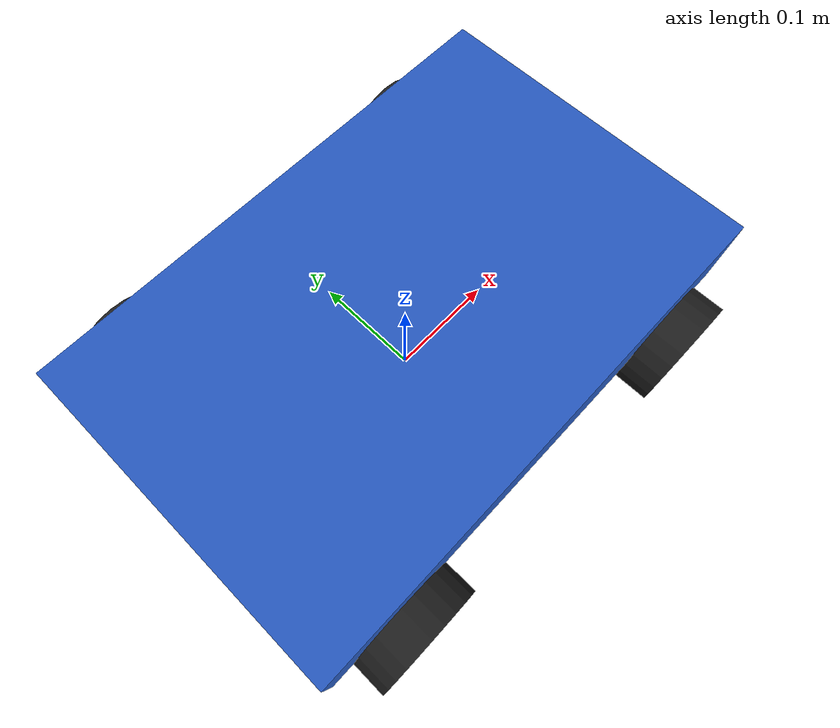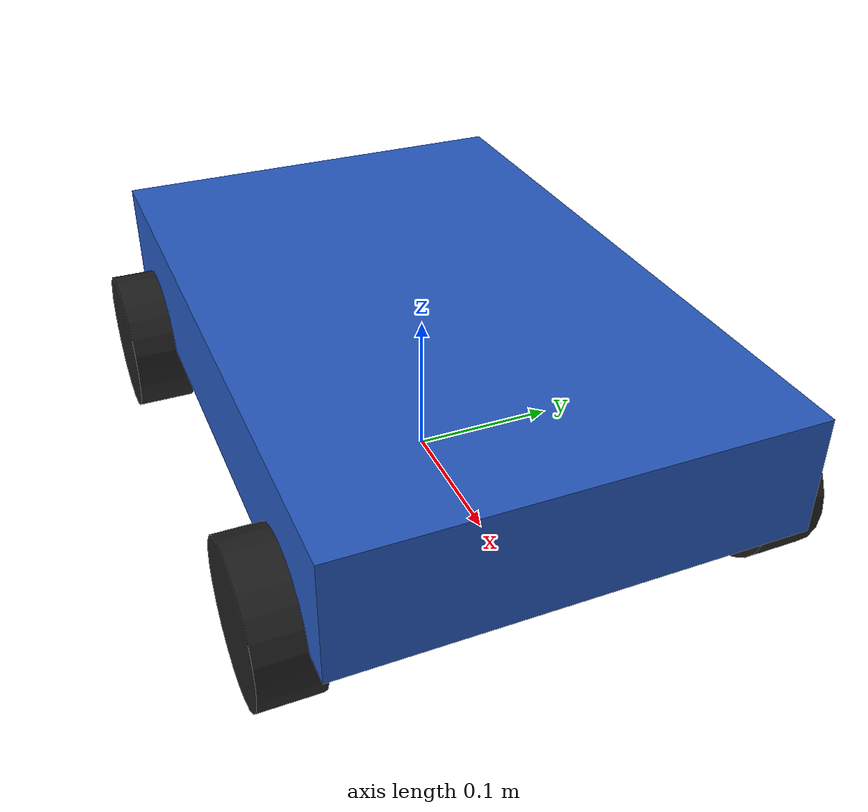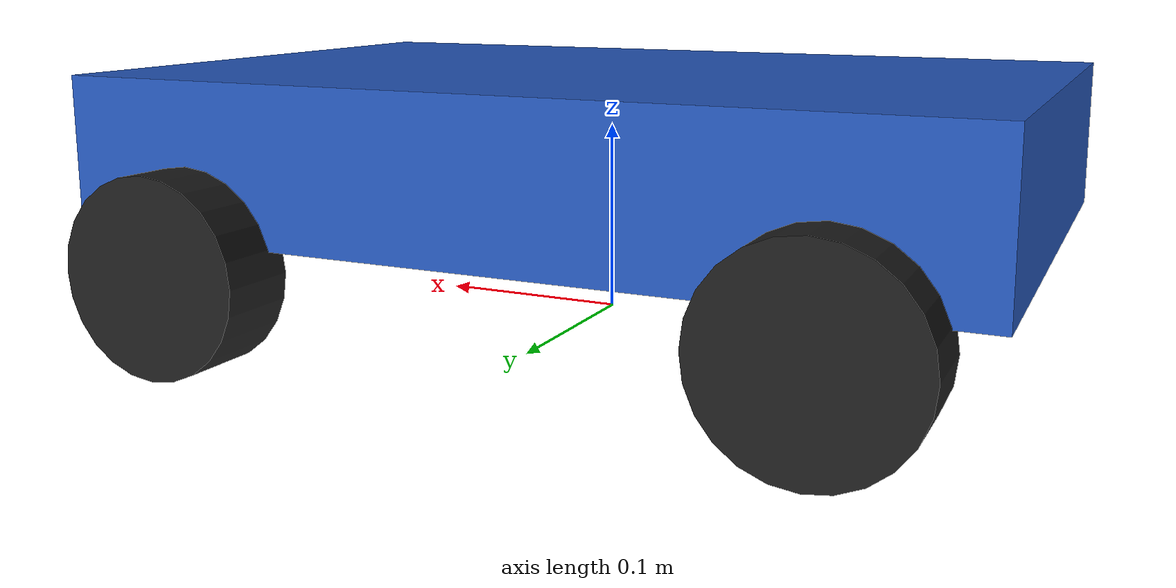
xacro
<?xml version="1.0"?>
<!-- Mecanum (roller) base; see holonomic_wheels_macro.xacro. -->
<robot name="mecanum_car" xmlns:xacro="http://ros.org/wiki/xacro">
  <xacro:arg name="is_ignition" default="true"/>
  <xacro:arg name="is_sim" default="true"/>
  <xacro:include filename="$(find robot_lab_robots)/description_common/urdf/oakd_camera.xacro"/>
  <xacro:include filename="$(find robot_lab_robots)/holonomic_wheels/urdf/holonomic_wheels_macro.xacro"/>
  <xacro:mecanum_car robot_name="mecanum_car"/>
</robot>

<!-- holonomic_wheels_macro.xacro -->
<robot xmlns:xacro="http://www.ros.org/wiki/xacro">

  <xacro:macro name="holonomic_wheel" params="name radius:=0.05 width:=0.04 mass:=0.3">
    <link name="${name}_link">
      <inertial>
        <mass value="${mass}"/>
        <inertia ixx="2.28e-4" ixy="0" ixz="0" iyy="3.75e-4" iyz="0" izz="2.28e-4"/>
      </inertial>
      <visual>
        <origin xyz="0 0 0" rpy="1.5708 0 0"/>
        <geometry>
          <cylinder radius="${radius}" length="${width}"/>
        </geometry>
        <material name="holonomic_tyre"/>
      </visual>
      <collision>
        <origin xyz="0 0 0" rpy="1.5708 0 0"/>
        <geometry>
          <cylinder radius="${radius}" length="${width}"/>
        </geometry>
      </collision>
    </link>
    <gazebo reference="${name}_link">
      <mu1>1.2</mu1>
      <mu2>1.2</mu2>
      <kp>1000000.0</kp>
      <kd>100.0</kd>
      <minDepth>0.001</minDepth>
      <maxVel>0.1</maxVel>
    </gazebo>
  </xacro:macro>

  <!-- One steered wheel: a knuckle link carries the wheel, so the wheel can
       spin about its own axis while the knuckle aims it. -->
  <xacro:macro name="steerable_wheel" params="corner">
    <link name="${corner}_steer_link">
      <inertial>
        <mass value="0.08"/>
        <inertia ixx="1.2e-5" ixy="0" ixz="0" iyy="1.2e-5" iyz="0" izz="1.2e-5"/>
      </inertial>
      <visual>
        <origin xyz="0 0 -0.012" rpy="0 0 0"/>
        <geometry>
          <cylinder radius="0.018" length="0.024"/>
        </geometry>
        <material name="holonomic_knuckle"/>
      </visual>
    </link>
    <joint name="${corner}_steer_joint" type="revolute">
      <parent link="base_link"/>
      <child link="${corner}_steer_link"/>
      <origin xyz="0 0 0" rpy="0 0 0"/>
      <axis xyz="0 0 1"/>
      <limit lower="-0.785" upper="0.785" effort="10.0" velocity="3.0"/>
      <dynamics damping="0.05" friction="0.0"/>
    </joint>
    <xacro:holonomic_wheel name="${corner}_wheel"/>
    <joint name="${corner}_wheel_joint" type="continuous">
      <parent link="${corner}_steer_link"/>
      <child link="${corner}_wheel_link"/>
      <origin xyz="0 0 -0.038" rpy="0 0 0"/>
      <axis xyz="0 1 0"/>
      <dynamics damping="0.005" friction="0.0"/>
    </joint>
  </xacro:macro>

  <!-- Chassis shared by both bases. -->
  <xacro:macro name="holonomic_chassis" params="robot_name">
    <link name="base_footprint"/>
    <link name="base_link">
      <inertial>
        <origin xyz="0 0 0.04" rpy="0 0 0"/>
        <mass value="3.4"/>
        <inertia ixx="1.5e-2" ixy="0" ixz="0" iyy="6.2e-2" iyz="0" izz="6.4e-2"/>
      </inertial>
      <visual>
        <origin xyz="0 0 0.04" rpy="0 0 0"/>
        <geometry>
          <box size="0.46 0.30 0.08"/>
        </geometry>
        <material name="holonomic_body"/>
      </visual>
      <collision>
        <origin xyz="0 0 0.04" rpy="0 0 0"/>
        <geometry>
          <box size="0.46 0.30 0.08"/>
        </geometry>
      </collision>
    </link>
    <joint name="base_joint" type="fixed">
      <parent link="base_footprint"/>
      <child link="base_link"/>
      <origin xyz="0 0 0.05" rpy="0 0 0"/>
    </joint>
  </xacro:macro>

  <xacro:macro name="holonomic_sensors">
    <link name="imu_link">
      <inertial>
        <mass value="0.01"/>
        <inertia ixx="1e-6" ixy="0" ixz="0" iyy="1e-6" iyz="0" izz="1e-6"/>
      </inertial>
    </link>
    <joint name="imu_joint" type="fixed">
      <parent link="base_link"/>
      <child link="imu_link"/>
      <origin xyz="0 0 0.08" rpy="0 0 0"/>
    </joint>
    <link name="laser_link">
      <inertial>
        <mass value="0.01"/>
        <inertia ixx="1e-6" ixy="0" ixz="0" iyy="1e-6" iyz="0" izz="1e-6"/>
      </inertial>
    </link>
    <joint name="laser_joint" type="fixed">
      <parent link="base_link"/>
      <child link="laser_link"/>
      <origin xyz="0.1 0 0.09" rpy="0 0 0"/>
    </joint>
  </xacro:macro>

  <xacro:macro name="holonomic_control" params="steer:=false">
    <ros2_control name="GazeboSimSystem" type="system">
      <hardware>
        <plugin>gz_ros2_control/GazeboSimROS2ControlPlugin</plugin>
      </hardware>
      <xacro:if value="${steer}">
        <xacro:macro name="holonomic_steer_interface" params="joint">
          <joint name="${joint}">
            <command_interface name="position">
              <param name="min">-0.785</param>
              <param name="max">0.785</param>
            </command_interface>
            <state_interface name="position"/>
            <state_interface name="velocity"/>
          </joint>
        </xacro:macro>
        <xacro:holonomic_steer_interface joint="front_left_steer_joint"/>
        <xacro:holonomic_steer_interface joint="front_right_steer_joint"/>
        <xacro:holonomic_steer_interface joint="rear_left_steer_joint"/>
        <xacro:holonomic_steer_interface joint="rear_right_steer_joint"/>
      </xacro:if>
      <xacro:macro name="holonomic_wheel_interface" params="joint">
        <joint name="${joint}">
          <command_interface name="velocity">
            <param name="min">-40</param>
            <param name="max">40</param>
          </command_interface>
          <state_interface name="position"/>
          <state_interface name="velocity"/>
        </joint>
      </xacro:macro>
      <xacro:holonomic_wheel_interface joint="front_left_wheel_joint"/>
      <xacro:holonomic_wheel_interface joint="front_right_wheel_joint"/>
      <xacro:holonomic_wheel_interface joint="rear_left_wheel_joint"/>
      <xacro:holonomic_wheel_interface joint="rear_right_wheel_joint"/>
    </ros2_control>
  </xacro:macro>

  <xacro:macro name="holonomic_gazebo" params="robot_name">
    <gazebo>
      <xacro:if value="$(arg is_ignition)">
        <plugin filename="ign_ros2_control-system" name="ign_ros2_control::IgnitionROS2ControlPlugin">
          <parameters>$(find robot_lab_robots)/holonomic_wheels/config/${robot_name}_controllers.yaml</parameters>
        </plugin>
        <plugin filename="ignition-gazebo-imu-system" name="ignition::gazebo::systems::Imu"/>
        <plugin filename="ignition-gazebo-sensors-system" name="ignition::gazebo::systems::Sensors">
          <render_engine>ogre2</render_engine>
        </plugin>
      </xacro:if>
      <xacro:unless value="$(arg is_ignition)">
        <plugin filename="gz_ros2_control-system" name="gz_ros2_control::GazeboSimROS2ControlPlugin">
          <parameters>$(find robot_lab_robots)/holonomic_wheels/config/${robot_name}_controllers.yaml</parameters>
        </plugin>
        <plugin filename="gz-sim-imu-system" name="gz::sim::systems::Imu"/>
        <plugin filename="gz-sim-sensors-system" name="gz::sim::systems::Sensors">
          <render_engine>ogre2</render_engine>
        </plugin>
      </xacro:unless>
    </gazebo>

    <gazebo reference="imu_link">
      <sensor name="imu" type="imu">
        <always_on>true</always_on>
        <update_rate>100</update_rate>
        <gz_frame_id>imu_link</gz_frame_id>
        <topic>imu</topic>
      </sensor>
    </gazebo>

    <gazebo reference="laser_link">
      <sensor name="lidar" type="gpu_lidar">
        <always_on>true</always_on>
        <visualize>true</visualize>
        <topic>scan</topic>
        <update_rate>5</update_rate>
        <gz_frame_id>laser_link</gz_frame_id>
        <lidar>
          <scan>
            <horizontal>
              <samples>360</samples>
              <resolution>1.00000</resolution>
              <min_angle>0.000000</min_angle>
              <max_angle>6.280000</max_angle>
            </horizontal>
          </scan>
          <range>
            <min>0.120000</min>
            <max>12.0</max>
            <resolution>0.02</resolution>
          </range>
          <noise>
            <type>gaussian</type>
            <mean>0.0</mean>
            <stddev>0.01</stddev>
          </noise>
        </lidar>
      </sensor>
    </gazebo>
  </xacro:macro>

  <!-- ================= four-wheel steering ================= -->
  <xacro:macro name="four_wheel_steer_car" params="robot_name">
    <xacro:holonomic_chassis robot_name="${robot_name}"/>
    <xacro:holonomic_sensors/>
    <xacro:steerable_wheel corner="front_left"/>
    <xacro:steerable_wheel corner="front_right"/>
    <xacro:steerable_wheel corner="rear_left"/>
    <xacro:steerable_wheel corner="rear_right"/>
    <xacro:holonomic_control steer="true"/>
    <xacro:holonomic_gazebo robot_name="${robot_name}"/>
  </xacro:macro>

  <!-- ================= mecanum ================= -->
  <xacro:macro name="mecanum_car" params="robot_name">
    <xacro:holonomic_chassis robot_name="${robot_name}"/>
    <xacro:holonomic_sensors/>
    <!-- Fixed wheels: four drive joints and no steering joints at all. -->
    <xacro:holonomic_wheel name="front_left_wheel"/>
    <joint name="front_left_wheel_joint" type="continuous">
      <parent link="base_link"/>
      <child link="front_left_wheel_link"/>
      <origin xyz="0.16 0.16 -0.012" rpy="0 0 0"/>
      <axis xyz="0 1 0"/>
      <dynamics damping="0.005" friction="0.0"/>
    </joint>
    <xacro:holonomic_wheel name="front_right_wheel"/>
    <joint name="front_right_wheel_joint" type="continuous">
      <parent link="base_link"/>
      <child link="front_right_wheel_link"/>
      <origin xyz="0.16 -0.16 -0.012" rpy="0 0 0"/>
      <axis xyz="0 1 0"/>
      <dynamics damping="0.005" friction="0.0"/>
    </joint>
    <xacro:holonomic_wheel name="rear_left_wheel"/>
    <joint name="rear_left_wheel_joint" type="continuous">
      <parent link="base_link"/>
      <child link="rear_left_wheel_link"/>
      <origin xyz="-0.16 0.16 -0.012" rpy="0 0 0"/>
      <axis xyz="0 1 0"/>
      <dynamics damping="0.005" friction="0.0"/>
    </joint>
    <xacro:holonomic_wheel name="rear_right_wheel"/>
    <joint name="rear_right_wheel_joint" type="continuous">
      <parent link="base_link"/>
      <child link="rear_right_wheel_link"/>
      <origin xyz="-0.16 -0.16 -0.012" rpy="0 0 0"/>
      <axis xyz="0 1 0"/>
      <dynamics damping="0.005" friction="0.0"/>
    </joint>
    <xacro:holonomic_control steer="false"/>
    <xacro:holonomic_gazebo robot_name="${robot_name}"/>
  </xacro:macro>

  <material name="holonomic_body">
    <color rgba="0.15 0.35 0.75 1"/>
  </material>
  <material name="holonomic_tyre">
    <color rgba="0.12 0.12 0.12 1"/>
  </material>
  <material name="holonomic_knuckle">
    <color rgba="0.6 0.6 0.65 1"/>
  </material>

</robot>
